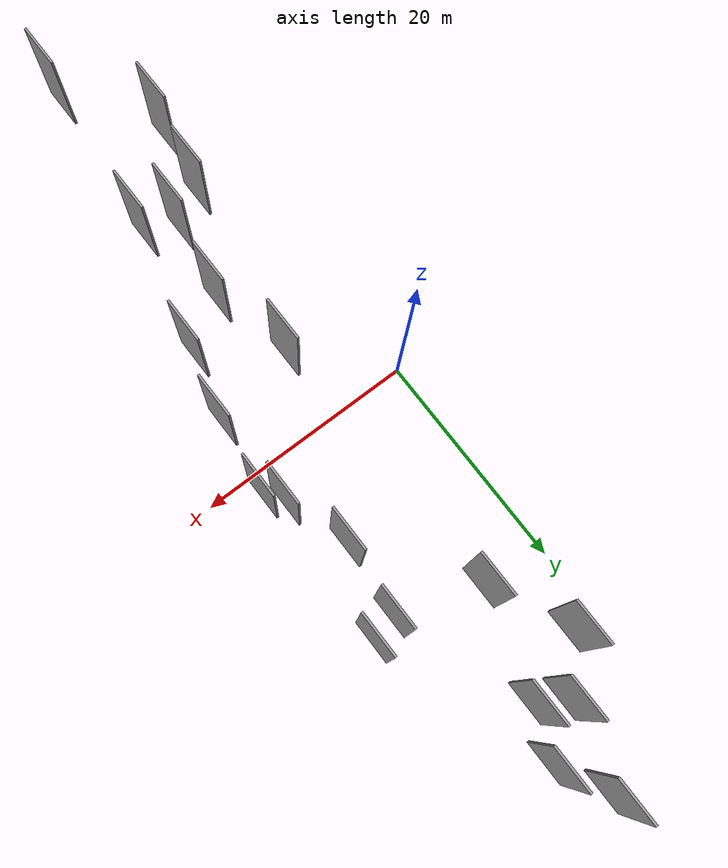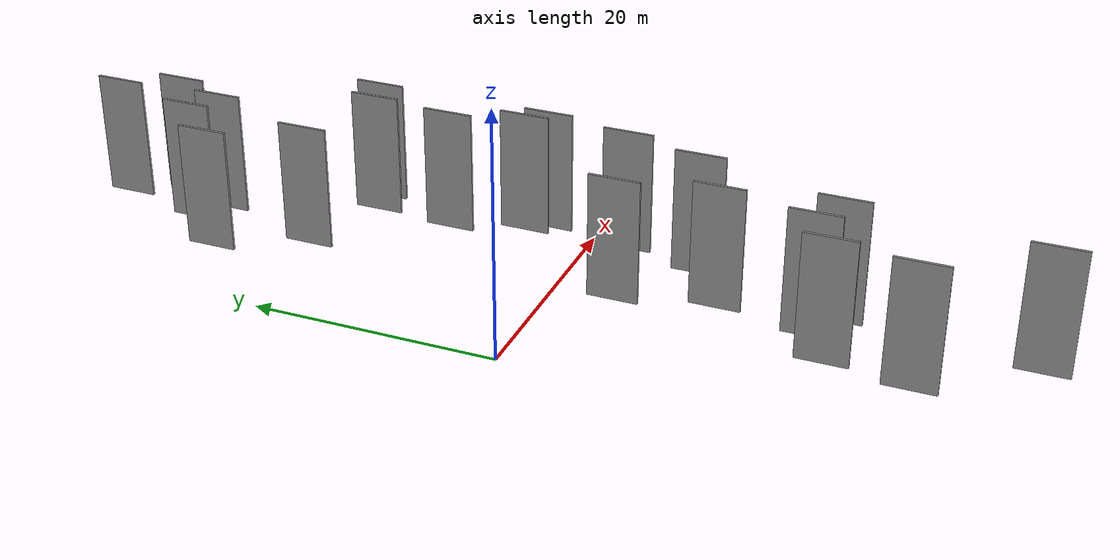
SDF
<sdf version="1.6">
 <world name="default">
  <scene>
   <sky><clouds><speed>12</speed></clouds></sky>
   <ambient>0.4 0.4 0.4 1</ambient>
   <background>0.7 0.7 0.7 1</background>
   <shadows>1</shadows>
  </scene>
  <gravity>0 0 -9.8066</gravity>
  <magnetic_field>6e-06 2.3e-05 -4.2e-05</magnetic_field>
  <physics default="0" name="default_physics" type="ode">
   <ode>
    <solver>
     <type>quick</type>
     <iters>10</iters>
     <sor>1.0</sor>
     <use_dynamic_moi_rescaling>0</use_dynamic_moi_rescaling>
    </solver>
    <constraints>
     <cfm>0</cfm>
     <erp>0.2</erp>
     <contact_max_correcting_vel>100</contact_max_correcting_vel>
     <contact_surface_layer>0.001</contact_surface_layer>
    </constraints>
   </ode>
   <max_step_size>0.004</max_step_size>
   <real_time_factor>1</real_time_factor>
   <real_time_update_rate>250</real_time_update_rate>
  </physics>
  <light name="sun" type="directional">
   <pose>0 0 10 0 0 0</pose>
   <diffuse>0.8 0.8 0.8 1</diffuse>
   <specular>0.2 0.2 0.2 1</specular>
   <attenuation>
    <range>1000</range>
    <constant>0.9</constant>
    <linear>0.01</linear>
    <quadratic>0.001</quadratic>
   </attenuation>
   <direction>-0.5 0.1 -0.9</direction>
  </light>
  <model name="grey_wall_1">
   <static>1</static>
   <pose>15.1925 -4.4480 2.5 0.000000 0.000000 1.570796</pose>
   <link name="link">
    <pose>0 0 5.00 0 0 0</pose>
    <collision name="collision"><geometry><box><size>4.00 0.2 10.00</size></box></geometry></collision>
    <visual name="visual">
     <cast_shadows>0</cast_shadows>
     <geometry><box><size>4.00 0.2 10.00</size></box></geometry>
     <material>
      <script>
       <uri>model://grey_wall/materials/scripts</uri>
       <uri>model://grey_wall/materials/textures</uri>
       <name>vrc/grey_wall</name>
      </script>
     </material>
    </visual>
   </link>
  </model>
  <model name="grey_wall_2">
   <static>1</static>
   <pose>9.1956 -13.5521 2.5 0.000000 0.000000 1.570796</pose>
   <link name="link">
    <pose>0 0 5.00 0 0 0</pose>
    <collision name="collision"><geometry><box><size>4.00 0.2 10.00</size></box></geometry></collision>
    <visual name="visual">
     <cast_shadows>0</cast_shadows>
     <geometry><box><size>4.00 0.2 10.00</size></box></geometry>
     <material>
      <script>
       <uri>model://grey_wall/materials/scripts</uri>
       <uri>model://grey_wall/materials/textures</uri>
       <name>vrc/grey_wall</name>
      </script>
     </material>
    </visual>
   </link>
  </model>
  <model name="grey_wall_3">
   <static>1</static>
   <pose>16.1554 17.0273 2.5 0.000000 0.000000 1.570796</pose>
   <link name="link">
    <pose>0 0 5.00 0 0 0</pose>
    <collision name="collision"><geometry><box><size>4.00 0.2 10.00</size></box></geometry></collision>
    <visual name="visual">
     <cast_shadows>0</cast_shadows>
     <geometry><box><size>4.00 0.2 10.00</size></box></geometry>
     <material>
      <script>
       <uri>model://grey_wall/materials/scripts</uri>
       <uri>model://grey_wall/materials/textures</uri>
       <name>vrc/grey_wall</name>
      </script>
     </material>
    </visual>
   </link>
  </model>
  <model name="grey_wall_4">
   <static>1</static>
   <pose>16.1447 2.4765 2.5 0.000000 0.000000 1.570796</pose>
   <link name="link">
    <pose>0 0 5.00 0 0 0</pose>
    <collision name="collision"><geometry><box><size>4.00 0.2 10.00</size></box></geometry></collision>
    <visual name="visual">
     <cast_shadows>0</cast_shadows>
     <geometry><box><size>4.00 0.2 10.00</size></box></geometry>
     <material>
      <script>
       <uri>model://grey_wall/materials/scripts</uri>
       <uri>model://grey_wall/materials/textures</uri>
       <name>vrc/grey_wall</name>
      </script>
     </material>
    </visual>
   </link>
  </model>
  <model name="grey_wall_5">
   <static>1</static>
   <pose>3.3052 25.6313 2.5 0.000000 0.000000 1.570796</pose>
   <link name="link">
    <pose>0 0 5.00 0 0 0</pose>
    <collision name="collision"><geometry><box><size>4.00 0.2 10.00</size></box></geometry></collision>
    <visual name="visual">
     <cast_shadows>0</cast_shadows>
     <geometry><box><size>4.00 0.2 10.00</size></box></geometry>
     <material>
      <script>
       <uri>model://grey_wall/materials/scripts</uri>
       <uri>model://grey_wall/materials/textures</uri>
       <name>vrc/grey_wall</name>
      </script>
     </material>
    </visual>
   </link>
  </model>
  <model name="grey_wall_6">
   <static>1</static>
   <pose>7.0249 29.3904 2.5 0.000000 0.000000 1.570796</pose>
   <link name="link">
    <pose>0 0 5.00 0 0 0</pose>
    <collision name="collision"><geometry><box><size>4.00 0.2 10.00</size></box></geometry></collision>
    <visual name="visual">
     <cast_shadows>0</cast_shadows>
     <geometry><box><size>4.00 0.2 10.00</size></box></geometry>
     <material>
      <script>
       <uri>model://grey_wall/materials/scripts</uri>
       <uri>model://grey_wall/materials/textures</uri>
       <name>vrc/grey_wall</name>
      </script>
     </material>
    </visual>
   </link>
  </model>
  <model name="grey_wall_7">
   <static>1</static>
   <pose>15.0430 4.0506 2.5 0.000000 0.000000 1.570796</pose>
   <link name="link">
    <pose>0 0 5.00 0 0 0</pose>
    <collision name="collision"><geometry><box><size>4.00 0.2 10.00</size></box></geometry></collision>
    <visual name="visual">
     <cast_shadows>0</cast_shadows>
     <geometry><box><size>4.00 0.2 10.00</size></box></geometry>
     <material>
      <script>
       <uri>model://grey_wall/materials/scripts</uri>
       <uri>model://grey_wall/materials/textures</uri>
       <name>vrc/grey_wall</name>
      </script>
     </material>
    </visual>
   </link>
  </model>
  <model name="grey_wall_8">
   <static>1</static>
   <pose>9.4013 28.0020 2.5 0.000000 0.000000 1.570796</pose>
   <link name="link">
    <pose>0 0 5.00 0 0 0</pose>
    <collision name="collision"><geometry><box><size>4.00 0.2 10.00</size></box></geometry></collision>
    <visual name="visual">
     <cast_shadows>0</cast_shadows>
     <geometry><box><size>4.00 0.2 10.00</size></box></geometry>
     <material>
      <script>
       <uri>model://grey_wall/materials/scripts</uri>
       <uri>model://grey_wall/materials/textures</uri>
       <name>vrc/grey_wall</name>
      </script>
     </material>
    </visual>
   </link>
  </model>
  <model name="grey_wall_9">
   <static>1</static>
   <pose>7.8689 -20.9231 2.5 0.000000 0.000000 1.570796</pose>
   <link name="link">
    <pose>0 0 5.00 0 0 0</pose>
    <collision name="collision"><geometry><box><size>4.00 0.2 10.00</size></box></geometry></collision>
    <visual name="visual">
     <cast_shadows>0</cast_shadows>
     <geometry><box><size>4.00 0.2 10.00</size></box></geometry>
     <material>
      <script>
       <uri>model://grey_wall/materials/scripts</uri>
       <uri>model://grey_wall/materials/textures</uri>
       <name>vrc/grey_wall</name>
      </script>
     </material>
    </visual>
   </link>
  </model>
  <model name="grey_wall_10">
   <static>1</static>
   <pose>3.7131 -29.2033 2.5 0.000000 0.000000 1.570796</pose>
   <link name="link">
    <pose>0 0 5.00 0 0 0</pose>
    <collision name="collision"><geometry><box><size>4.00 0.2 10.00</size></box></geometry></collision>
    <visual name="visual">
     <cast_shadows>0</cast_shadows>
     <geometry><box><size>4.00 0.2 10.00</size></box></geometry>
     <material>
      <script>
       <uri>model://grey_wall/materials/scripts</uri>
       <uri>model://grey_wall/materials/textures</uri>
       <name>vrc/grey_wall</name>
      </script>
     </material>
    </visual>
   </link>
  </model>
  <model name="grey_wall_11">
   <static>1</static>
   <pose>11.0939 32.3496 2.5 0.000000 0.000000 1.570796</pose>
   <link name="link">
    <pose>0 0 5.00 0 0 0</pose>
    <collision name="collision"><geometry><box><size>4.00 0.2 10.00</size></box></geometry></collision>
    <visual name="visual">
     <cast_shadows>0</cast_shadows>
     <geometry><box><size>4.00 0.2 10.00</size></box></geometry>
     <material>
      <script>
       <uri>model://grey_wall/materials/scripts</uri>
       <uri>model://grey_wall/materials/textures</uri>
       <name>vrc/grey_wall</name>
      </script>
     </material>
    </visual>
   </link>
  </model>
  <model name="grey_wall_12">
   <static>1</static>
   <pose>13.7963 16.3314 2.5 0.000000 0.000000 1.570796</pose>
   <link name="link">
    <pose>0 0 5.00 0 0 0</pose>
    <collision name="collision"><geometry><box><size>4.00 0.2 10.00</size></box></geometry></collision>
    <visual name="visual">
     <cast_shadows>0</cast_shadows>
     <geometry><box><size>4.00 0.2 10.00</size></box></geometry>
     <material>
      <script>
       <uri>model://grey_wall/materials/scripts</uri>
       <uri>model://grey_wall/materials/textures</uri>
       <name>vrc/grey_wall</name>
      </script>
     </material>
    </visual>
   </link>
  </model>
  <model name="grey_wall_13">
   <static>1</static>
   <pose>8.9138 36.6285 2.5 0.000000 0.000000 1.570796</pose>
   <link name="link">
    <pose>0 0 5.00 0 0 0</pose>
    <collision name="collision"><geometry><box><size>4.00 0.2 10.00</size></box></geometry></collision>
    <visual name="visual">
     <cast_shadows>0</cast_shadows>
     <geometry><box><size>4.00 0.2 10.00</size></box></geometry>
     <material>
      <script>
       <uri>model://grey_wall/materials/scripts</uri>
       <uri>model://grey_wall/materials/textures</uri>
       <name>vrc/grey_wall</name>
      </script>
     </material>
    </visual>
   </link>
  </model>
  <model name="grey_wall_14">
   <static>1</static>
   <pose>13.5782 -10.7197 2.5 0.000000 0.000000 1.570796</pose>
   <link name="link">
    <pose>0 0 5.00 0 0 0</pose>
    <collision name="collision"><geometry><box><size>4.00 0.2 10.00</size></box></geometry></collision>
    <visual name="visual">
     <cast_shadows>0</cast_shadows>
     <geometry><box><size>4.00 0.2 10.00</size></box></geometry>
     <material>
      <script>
       <uri>model://grey_wall/materials/scripts</uri>
       <uri>model://grey_wall/materials/textures</uri>
       <name>vrc/grey_wall</name>
      </script>
     </material>
    </visual>
   </link>
  </model>
  <model name="grey_wall_15">
   <static>1</static>
   <pose>10.7086 -22.2856 2.5 0.000000 0.000000 1.570796</pose>
   <link name="link">
    <pose>0 0 5.00 0 0 0</pose>
    <collision name="collision"><geometry><box><size>4.00 0.2 10.00</size></box></geometry></collision>
    <visual name="visual">
     <cast_shadows>0</cast_shadows>
     <geometry><box><size>4.00 0.2 10.00</size></box></geometry>
     <material>
      <script>
       <uri>model://grey_wall/materials/scripts</uri>
       <uri>model://grey_wall/materials/textures</uri>
       <name>vrc/grey_wall</name>
      </script>
     </material>
    </visual>
   </link>
  </model>
  <model name="grey_wall_16">
   <static>1</static>
   <pose>6.5832 18.8203 2.5 0.000000 0.000000 1.570796</pose>
   <link name="link">
    <pose>0 0 5.00 0 0 0</pose>
    <collision name="collision"><geometry><box><size>4.00 0.2 10.00</size></box></geometry></collision>
    <visual name="visual">
     <cast_shadows>0</cast_shadows>
     <geometry><box><size>4.00 0.2 10.00</size></box></geometry>
     <material>
      <script>
       <uri>model://grey_wall/materials/scripts</uri>
       <uri>model://grey_wall/materials/textures</uri>
       <name>vrc/grey_wall</name>
      </script>
     </material>
    </visual>
   </link>
  </model>
  <model name="grey_wall_17">
   <static>1</static>
   <pose>7.4176 -6.2076 2.5 0.000000 0.000000 1.570796</pose>
   <link name="link">
    <pose>0 0 5.00 0 0 0</pose>
    <collision name="collision"><geometry><box><size>4.00 0.2 10.00</size></box></geometry></collision>
    <visual name="visual">
     <cast_shadows>0</cast_shadows>
     <geometry><box><size>4.00 0.2 10.00</size></box></geometry>
     <material>
      <script>
       <uri>model://grey_wall/materials/scripts</uri>
       <uri>model://grey_wall/materials/textures</uri>
       <name>vrc/grey_wall</name>
      </script>
     </material>
    </visual>
   </link>
  </model>
  <model name="grey_wall_18">
   <static>1</static>
   <pose>9.2504 -37.2852 2.5 0.000000 0.000000 1.570796</pose>
   <link name="link">
    <pose>0 0 5.00 0 0 0</pose>
    <collision name="collision"><geometry><box><size>4.00 0.2 10.00</size></box></geometry></collision>
    <visual name="visual">
     <cast_shadows>0</cast_shadows>
     <geometry><box><size>4.00 0.2 10.00</size></box></geometry>
     <material>
      <script>
       <uri>model://grey_wall/materials/scripts</uri>
       <uri>model://grey_wall/materials/textures</uri>
       <name>vrc/grey_wall</name>
      </script>
     </material>
    </visual>
   </link>
  </model>
  <model name="grey_wall_19">
   <static>1</static>
   <pose>13.1922 9.7101 2.5 0.000000 0.000000 1.570796</pose>
   <link name="link">
    <pose>0 0 5.00 0 0 0</pose>
    <collision name="collision"><geometry><box><size>4.00 0.2 10.00</size></box></geometry></collision>
    <visual name="visual">
     <cast_shadows>0</cast_shadows>
     <geometry><box><size>4.00 0.2 10.00</size></box></geometry>
     <material>
      <script>
       <uri>model://grey_wall/materials/scripts</uri>
       <uri>model://grey_wall/materials/textures</uri>
       <name>vrc/grey_wall</name>
      </script>
     </material>
    </visual>
   </link>
  </model>
  <model name="grey_wall_20">
   <static>1</static>
   <pose>4.7611 -22.7635 2.5 0.000000 0.000000 1.570796</pose>
   <link name="link">
    <pose>0 0 5.00 0 0 0</pose>
    <collision name="collision"><geometry><box><size>4.00 0.2 10.00</size></box></geometry></collision>
    <visual name="visual">
     <cast_shadows>0</cast_shadows>
     <geometry><box><size>4.00 0.2 10.00</size></box></geometry>
     <material>
      <script>
       <uri>model://grey_wall/materials/scripts</uri>
       <uri>model://grey_wall/materials/textures</uri>
       <name>vrc/grey_wall</name>
      </script>
     </material>
    </visual>
   </link>
  </model>
 </world>
</sdf>
